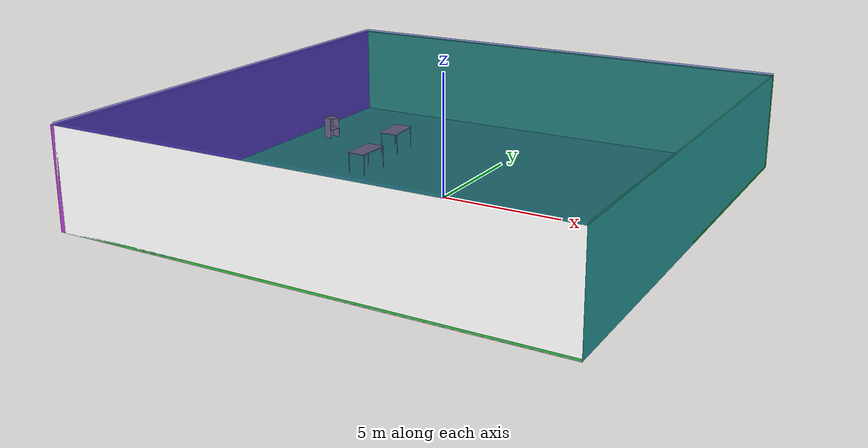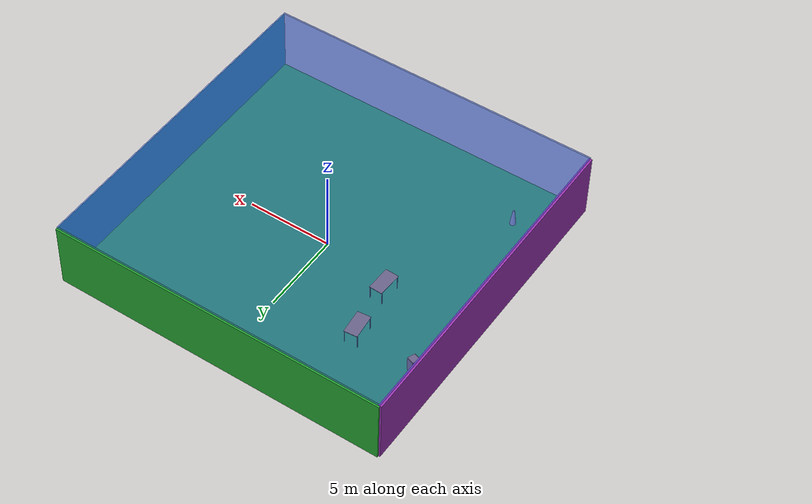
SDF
<sdf version="1.4">
 <world name="default">
  <physics type="ode">
   <max_step_size>0.001</max_step_size>
   <real_time_factor>1</real_time_factor>
   <real_time_update_rate>1000</real_time_update_rate>
   <gravity>0 0 -9.8</gravity>
  </physics>
  <scene><ambient>0.4 0.4 0.4 1</ambient><background>0.7 0.7 0.7 1</background><shadows>1</shadows></scene>
  <model name="Surrounding">
   <static>1</static>
   <link name="Ceiling">
    <collision name="Ceiling_Collision"><geometry><box><size>20 20 0.1</size></box></geometry></collision>
    <visual name="Ceiling_Visual">
     <geometry><box><size>20 20 0.1</size></box></geometry>
     <material>
      <script><uri>file://media/materials/scripts/gazebo.material</uri><name>Gazebo/BlueTransparent</name></script>
     </material>
    </visual>
    <pose>0 0 4.05 0 0 0</pose>
   </link>
   <link name="Wall_South">
    <collision name="Wall_South_Collision">
     <geometry><box><size>20 0 4</size></box></geometry>
     <pose>0 0 2 0 -0 0</pose>
    </collision>
    <visual name="Wall_South_Visual">
     <pose>0 0 2 0 -0 0</pose>
     <geometry><box><size>20 0 4</size></box></geometry>
     <material>
      <script><uri>file://media/materials/scripts/gazebo.material</uri><name>Gazebo/White</name></script>
     </material>
    </visual>
    <velocity_decay><linear>0</linear><angular>0</angular></velocity_decay>
    <pose>0 -10 0 0 -0 0</pose>
   </link>
   <link name="Wall_East">
    <collision name="Wall_21_Collision">
     <geometry><box><size>20 0 4</size></box></geometry>
     <pose>0 0 2 0 -0 0</pose>
    </collision>
    <visual name="Wall_21_Visual">
     <pose>0 0 2 0 -0 0</pose>
     <geometry><box><size>20 0 4</size></box></geometry>
     <material>
      <script><uri>file://media/materials/scripts/gazebo.material</uri><name>Gazebo/TurquoiseGlow</name></script>
     </material>
    </visual>
    <velocity_decay><linear>0</linear><angular>0</angular></velocity_decay>
    <pose>10 0 0 0 -0 1.5708</pose>
   </link>
   <link name="Wall_North">
    <collision name="Wall_22_Collision">
     <geometry><box><size>20 0.2 4</size></box></geometry>
     <pose>0 0 2 0 -0 0</pose>
    </collision>
    <visual name="Wall_22_Visual">
     <pose>0 0 2 0 -0 0</pose>
     <geometry><box><size>20 0.2 4</size></box></geometry>
     <material>
      <script><uri>file://media/materials/scripts/gazebo.material</uri><name>Gazebo/GreenGlow</name></script>
     </material>
    </visual>
    <velocity_decay><linear>0</linear><angular>0</angular></velocity_decay>
    <pose>0 10 0 0 -0 0</pose>
   </link>
   <link name="Wall_West">
    <collision name="Wall_23_Collision">
     <geometry><box><size>20 0.2 4</size></box></geometry>
     <pose>0 0 2 0 -0 0</pose>
    </collision>
    <visual name="Wall_23_Visual">
     <pose>0 0 2 0 -0 0</pose>
     <geometry><box><size>20 0.2 4</size></box></geometry>
     <material>
      <script><uri>file://media/materials/scripts/gazebo.material</uri><name>Gazebo/PurpleGlow</name></script>
     </material>
    </visual>
    <velocity_decay><linear>0</linear><angular>0</angular></velocity_decay>
    <pose>-10 0 0 0 0 -1.5708</pose>
   </link>
   <link name="Ground_link">
    <collision name="collision">
     <pose>0 0 .05 0 -0 0</pose>
     <geometry><box><size>20 20 0.1</size></box></geometry>
    </collision>
    <visual name="visual">
     <pose>0 0 .05 0 -0 0</pose>
     <geometry><box><size>20 20 0.1</size></box></geometry>
     <material>
      <script><uri>file://media/materials/scripts/gazebo.material</uri><name>Gazebo/Green</name></script>
     </material>
    </visual>
   </link>
   <static>1</static>
  </model>
  <spherical_coordinates>
   <surface_model>EARTH_WGS84</surface_model>
   <latitude_deg>0</latitude_deg>
   <longitude_deg>0</longitude_deg>
   <elevation>0</elevation>
   <heading_deg>0</heading_deg>
  </spherical_coordinates>
  <light name="lightball_0" type="diffuse">
   <diffuse>0.8 0.8 0.8 1</diffuse>
   <specular>0.2 0.2 0.2 1</specular>
   <attenuation>
    <range>100</range>
    <constant>0.7</constant>
    <linear>0.01</linear>
    <quadratic>0.001</quadratic>
   </attenuation>
   <direction>-0.5 0.1 -0.9</direction>
   <pose>2.45012459925 2.89715200596 3.74328413862 0 0 0</pose>
  </light>
  <light name="lightball_1" type="diffuse">
   <diffuse>0.8 0.8 0.8 1</diffuse>
   <specular>0.2 0.2 0.2 1</specular>
   <attenuation>
    <range>100</range>
    <constant>0.7</constant>
    <linear>0.01</linear>
    <quadratic>0.001</quadratic>
   </attenuation>
   <direction>-0.5 0.1 -0.9</direction>
   <pose>-8.61430403836 7.97046328385 3.55337513789 0 0 0</pose>
  </light>
  <light name="lightball_2" type="diffuse">
   <diffuse>0.8 0.8 0.8 1</diffuse>
   <specular>0.2 0.2 0.2 1</specular>
   <attenuation>
    <range>100</range>
    <constant>0.7</constant>
    <linear>0.01</linear>
    <quadratic>0.001</quadratic>
   </attenuation>
   <direction>-0.5 0.1 -0.9</direction>
   <pose>8.50142752688 -0.0954577496025 2.55777209352 0 0 0</pose>
  </light>
  <light name="lightball_3" type="diffuse">
   <diffuse>0.8 0.8 0.8 1</diffuse>
   <specular>0.2 0.2 0.2 1</specular>
   <attenuation>
    <range>100</range>
    <constant>0.7</constant>
    <linear>0.01</linear>
    <quadratic>0.001</quadratic>
   </attenuation>
   <direction>-0.5 0.1 -0.9</direction>
   <pose>2.07764415039 -2.13787195232 2.41422959175 0 0 0</pose>
  </light>
  <light name="lightball_4" type="diffuse">
   <diffuse>0.8 0.8 0.8 1</diffuse>
   <specular>0.2 0.2 0.2 1</specular>
   <attenuation>
    <range>100</range>
    <constant>0.7</constant>
    <linear>0.01</linear>
    <quadratic>0.001</quadratic>
   </attenuation>
   <direction>-0.5 0.1 -0.9</direction>
   <pose>7.81581542715 -7.89932185167 2.74057487915 0 0 0</pose>
  </light>
  <include>
   <uri>model://construction_cone</uri>
   <pose>-7.36790021389 -6.87748385519 0 0 0 2.81764142804</pose>
  </include>
  <include><uri>model://cabinet</uri><pose>-8.49301213073 4.60219998878 0 0 0 2.77559128535</pose></include>
  <include><uri>model://table</uri><pose>-4.39898676346 1.21054519975 0 0 0 1.53194068857</pose></include>
  <include><uri>model://table</uri><pose>-4.8861819109 4.36895343574 0 0 0 1.66762739913</pose></include>
 </world>
</sdf>

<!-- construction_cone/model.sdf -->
<sdf version="1.5">
  <model name="Construction Cone">
    <link name="link">
      <collision name="collision">
        <geometry>
          <mesh>
            <scale>10 10 10</scale>
            <uri>file://isr-testbed/construction_cone/meshes/construction_cone.dae</uri>
          </mesh>
        </geometry>
      </collision>
      <visual name="visual">
        <geometry>
          <mesh>
            <scale>10 10 10</scale>
            <uri>file://isr-testbed/construction_cone/meshes/construction_cone.dae</uri>
          </mesh>
        </geometry>
      </visual>
    </link>
  </model>
</sdf>

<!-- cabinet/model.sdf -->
<sdf version="1.5">
  <model name="cabinet">
    <static>true</static>
    <link name="cabinet_bottom_plate">
      <inertial>
        <pose>0 0 -1 0 0 0</pose>
        <inertia>
          <ixx>2.050000</ixx>
          <ixy>0</ixy>
          <ixz>0</ixz>
          <iyy>2.050000</iyy>
          <iyz>0</iyz>
          <izz>2.050000</izz>
        </inertia>
        <mass>25.000000</mass>
      </inertial>
      <collision name="cabinet_bottom_plate_geom">
        <pose>0 0 0.010000 0 0 0</pose>
        <geometry>
          <box>
            <size>0.450000 0.450000 0.020000</size>
          </box>
        </geometry>
      </collision>
      <visual name="cabinet_bottom_plate_geom_visual">
        <pose>0 0 0.010000 0 0 0</pose>
        <geometry>
          <box>
            <size>0.450000 0.450000 0.020000</size>
          </box>
        </geometry>
        <material>
          <script>
            <uri>model://media/materials/scripts/gazebo.material</uri>
            <name>Gazebo/Wood</name>
          </script>
        </material>
      </visual>
      <collision name="cabinet_bottom_plate_geom_cabinet_back_plate">
        <pose>0.235000 0 0.510000 0 0 0</pose>
        <geometry>
          <box>
            <size>0.020000 0.450000 1.020000</size>
          </box>
        </geometry>
      </collision>
      <visual name="cabinet_bottom_plate_geom_cabinet_back_plate_visual">
        <pose>0.235000 0 0.510000 0 0 0</pose>
        <geometry>
          <box>
            <size>0.020000 0.450000 1.020000</size>
          </box>
        </geometry>
        <material>
          <script>
            <uri>model://media/materials/scripts/gazebo.material</uri>
            <name>Gazebo/Wood</name>
          </script>
        </material>
      </visual>
      <collision name="cabinet_bottom_plate_geom_cabinet_left_plate">
        <pose>0 0.235000 0.510000 0 0 0</pose>
        <geometry>
          <box>
            <size>0.450000 0.020000 1.020000</size>
          </box>
        </geometry>
      </collision>
      <visual name="cabinet_bottom_plate_geom_cabinet_left_plate_visual">
        <pose>0 0.235000 0.510000 0 0 0</pose>
        <geometry>
          <box>
            <size>0.450000 0.020000 1.020000</size>
          </box>
        </geometry>
        <material>
          <script>
            <uri>model://media/materials/scripts/gazebo.material</uri>
            <name>Gazebo/Wood</name>
          </script>
        </material>
      </visual>
      <collision name="cabinet_bottom_plate_geom_cabinet_middle_plate">
        <pose>0 0 0.510000 0 0 0</pose>
        <geometry>
          <box>
            <size>0.450000 0.450000 0.020000</size>
          </box>
        </geometry>
      </collision>
      <visual name="cabinet_bottom_plate_geom_cabinet_middle_plate_visual">
        <pose>0 0 0.510000 0 0 0</pose>
        <geometry>
          <box>
            <size>0.450000 0.450000 0.020000</size>
          </box>
        </geometry>
        <material>
          <script>
            <uri>model://media/materials/scripts/gazebo.material</uri>
            <name>Gazebo/Wood</name>
          </script>
        </material>
      </visual>
      <collision name="cabinet_bottom_plate_geom_cabinet_right_plate">
        <pose>0 -0.235000 0.510000 0 0 0</pose>
        <geometry>
          <box>
            <size>0.450000 0.020000 1.020000</size>
          </box>
        </geometry>
      </collision>
      <visual name="cabinet_bottom_plate_geom_cabinet_right_plate_visual">
        <pose>0 -0.235000 0.510000 0 0 0</pose>
        <geometry>
          <box>
            <size>0.450000 0.020000 1.020000</size>
          </box>
        </geometry>
        <material>
          <script>
            <uri>model://media/materials/scripts/gazebo.material</uri>
            <name>Gazebo/Wood</name>
          </script>
        </material>
      </visual>
      <collision name="cabinet_bottom_plate_geom_cabinet_top_plate">
        <pose>0 0 1.010000 0 0 0</pose>
        <geometry>
          <box>
            <size>0.450000 0.450000 0.020000</size>
          </box>
        </geometry>
      </collision>
      <visual name="cabinet_bottom_plate_geom_cabinet_top_plate_visual">
        <pose>0 0 1.010000 0 0 0</pose>
        <geometry>
          <box>
            <size>0.450000 0.450000 0.020000</size>
          </box>
        </geometry>
        <material>
          <script>
            <uri>model://media/materials/scripts/gazebo.material</uri>
            <name>Gazebo/Wood</name>
          </script>
        </material>
      </visual>
    </link>
  </model>
</sdf>

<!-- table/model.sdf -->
<sdf version="1.5">
  <model name="table">
    <static>true</static>
    <link name="link">
      <collision name="surface">
        <pose>0 0 1.0 0 0 0</pose>
        <geometry>
          <box>
            <size>1.5 0.8 0.03</size>
          </box>
        </geometry>
        <surface>
          <friction>
            <ode>
              <mu>0.6</mu>
              <mu2>0.6</mu2>
            </ode>
          </friction>
        </surface>
      </collision>
      <visual name="visual1">
        <pose>0 0 1.0 0 0 0</pose>
        <geometry>
          <box>
            <size>1.5 0.8 0.03</size>
          </box>
        </geometry>
        <material>
          <script>
            <uri>model://media/materials/scripts/gazebo.material</uri>
            <name>Gazebo/Wood</name>
          </script>
        </material>
      </visual>
      <collision name="front_left_leg">
        <pose>0.68 0.38 0.5 0 0 0</pose>
        <geometry>
          <cylinder>
            <radius>0.02</radius>
            <length>1.0</length>
          </cylinder>
        </geometry>
      </collision>
      <visual name="front_left_leg">
        <pose>0.68 0.38 0.5 0 0 0</pose>
        <geometry>
          <cylinder>
            <radius>0.02</radius>
            <length>1.0</length>
          </cylinder>
        </geometry>
        <material>
          <script>
            <uri>model://media/materials/scripts/gazebo.material</uri>
            <name>Gazebo/Grey</name>
          </script>
        </material>
      </visual>
      <collision name="front_right_leg">
        <pose>0.68 -0.38 0.5 0 0 0</pose>
        <geometry>
          <cylinder>
            <radius>0.02</radius>
            <length>1.0</length>
          </cylinder>
        </geometry>
      </collision>
      <visual name="front_right_leg">
        <pose>0.68 -0.38 0.5 0 0 0</pose>
        <geometry>
          <cylinder>
            <radius>0.02</radius>
            <length>1.0</length>
          </cylinder>
        </geometry>
        <material>
          <script>
            <uri>model://media/materials/scripts/gazebo.material</uri>
            <name>Gazebo/Grey</name>
          </script>
        </material>
      </visual>
      <collision name="back_right_leg">
        <pose>-0.68 -0.38 0.5 0 0 0</pose>
        <geometry>
          <cylinder>
            <radius>0.02</radius>
            <length>1.0</length>
          </cylinder>
        </geometry>
      </collision>
      <visual name="back_right_leg">
        <pose>-0.68 -0.38 0.5 0 0 0</pose>
        <geometry>
          <cylinder>
            <radius>0.02</radius>
            <length>1.0</length>
          </cylinder>
        </geometry>
        <material>
          <script>
            <uri>model://media/materials/scripts/gazebo.material</uri>
            <name>Gazebo/Grey</name>
          </script>
        </material>
      </visual>
      <collision name="back_left_leg">
        <pose>-0.68 0.38 0.5 0 0 0</pose>
        <geometry>
          <cylinder>
            <radius>0.02</radius>
            <length>1.0</length>
          </cylinder>
        </geometry>
      </collision>
      <visual name="back_left_leg">
        <pose>-0.68 0.38 0.5 0 0 0</pose>
        <geometry>
          <cylinder>
            <radius>0.02</radius>
            <length>1.0</length>
          </cylinder>
        </geometry>
        <material>
          <script>
            <uri>model://media/materials/scripts/gazebo.material</uri>
            <name>Gazebo/Grey</name>
          </script>
        </material>
      </visual>
    </link>
  </model>
</sdf>
